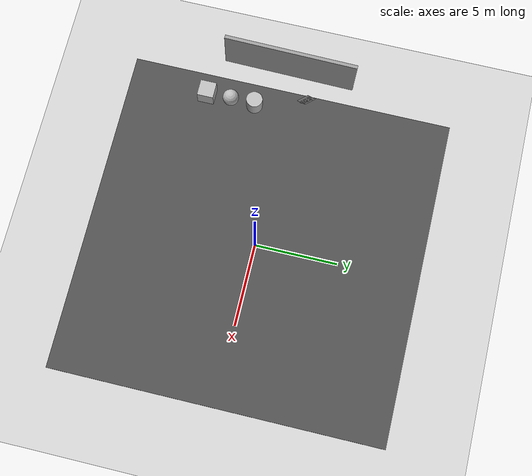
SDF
<sdf version="1.4">
 <world name="default">
  <model name="ground_plane">
   <static>1</static>
   <link name="link">
    <collision name="collision">
     <geometry><plane><normal>0 0 1</normal><size>100 100</size></plane></geometry>
     <surface><friction><ode><mu>100</mu><mu2>50</mu2></ode></friction></surface>
    </collision>
    <visual name="visual">
     <cast_shadows>0</cast_shadows>
     <geometry><plane><normal>0 0 1</normal><size>100 100</size></plane></geometry>
     <material>
      <script><uri>file://media/materials/scripts/gazebo.material</uri><name>Gazebo/Grey</name></script>
     </material>
    </visual>
    <velocity_decay><linear>0</linear><angular>0</angular></velocity_decay>
   </link>
  </model>
  <model name="grey_wall">
   <static>1</static>
   <link name="link">
    <pose>0 0 1.4 0 -0 0</pose>
    <collision name="collision"><geometry><box><size>7.5 0.2 2.8</size></box></geometry></collision>
    <visual name="visual">
     <cast_shadows>0</cast_shadows>
     <geometry><box><size>7.5 0.2 2.8</size></box></geometry>
     <material>
      <script>
       <uri>model://grey_wall/materials/scripts</uri>
       <uri>model://grey_wall/materials/textures</uri>
       <name>vrc/grey_wall</name>
      </script>
     </material>
    </visual>
    <velocity_decay><linear>0</linear><angular>0</angular></velocity_decay>
   </link>
   <pose>-9.26288 -0.192546 4.42606 0 -0 1.55593</pose>
  </model>
  <model name="textured_shapes">
   <pose>-8.70069 -3.6194 0.55 0 -0 0</pose>
   <link name="box">
    <pose>0 -1.5 0 0 -0 0</pose>
    <collision name="collision"><geometry><box><size>1 1 1</size></box></geometry></collision>
    <visual name="visual">
     <geometry><box><size>1 1 1</size></box></geometry>
     <material>
      <script>
       <uri>model://textured_shapes/materials/scripts</uri>
       <uri>model://textured_shapes/materials/textures</uri>
       <name>TexturedShape/Squares</name>
      </script>
     </material>
    </visual>
    <velocity_decay><linear>0</linear><angular>0</angular></velocity_decay>
    <inertial>
     <inertia><ixx>1</ixx><ixy>0</ixy><ixz>0</ixz><iyy>1</iyy><iyz>0</iyz><izz>1</izz></inertia>
     <mass>1</mass>
    </inertial>
   </link>
   <link name="sphere">
    <collision name="collision"><geometry><sphere><radius>0.5</radius></sphere></geometry></collision>
    <visual name="visual">
     <geometry><sphere><radius>0.5</radius></sphere></geometry>
     <material>
      <script>
       <uri>model://textured_shapes/materials/scripts</uri>
       <uri>model://textured_shapes/materials/textures</uri>
       <name>TexturedShape/Squares</name>
      </script>
     </material>
    </visual>
    <velocity_decay><linear>0</linear><angular>0</angular></velocity_decay>
    <inertial>
     <inertia><ixx>1</ixx><ixy>0</ixy><ixz>0</ixz><iyy>1</iyy><iyz>0</iyz><izz>1</izz></inertia>
     <mass>1</mass>
    </inertial>
   </link>
   <link name="cylinder">
    <pose>0 1.5 0 0 -0 0</pose>
    <collision name="collision">
     <geometry><cylinder><radius>0.5</radius><length>1</length></cylinder></geometry>
    </collision>
    <visual name="visual">
     <geometry><cylinder><radius>0.5</radius><length>1</length></cylinder></geometry>
     <material>
      <script>
       <uri>model://textured_shapes/materials/scripts</uri>
       <uri>model://textured_shapes/materials/textures</uri>
       <name>TexturedShape/Squares</name>
      </script>
     </material>
    </visual>
    <velocity_decay><linear>0</linear><angular>0</angular></velocity_decay>
    <inertial>
     <inertia><ixx>1</ixx><ixy>0</ixy><ixz>0</ixz><iyy>1</iyy><iyz>0</iyz><izz>1</izz></inertia>
     <mass>1</mass>
    </inertial>
   </link>
   <static>0</static>
  </model>
  <model name="asphalt_plane_0">
   <static>1</static>
   <link name="link">
    <collision name="collision"><geometry><box><size>20 20 0.1</size></box></geometry></collision>
    <visual name="visual">
     <cast_shadows>0</cast_shadows>
     <geometry><box><size>20 20 0.1</size></box></geometry>
     <material>
      <script>
       <uri>model://asphalt_plane/materials/scripts</uri>
       <uri>model://asphalt_plane/materials/textures</uri>
       <name>vrc/asphalt</name>
      </script>
     </material>
    </visual>
    <velocity_decay><linear>0</linear><angular>0</angular></velocity_decay>
   </link>
   <pose>-0.08673 -0.042897 0 0 -0 0</pose>
  </model>
  <model name="frc2016_roughterrain">
   <static>1</static>
   <link name="link">
    <visual name="platform">
     <pose>0 0 0.08269 0 -0 0</pose>
     <geometry><box><size>1.27 0.5969 0.003175</size></box></geometry>
    </visual>
    <collision name="platform">
     <pose>0 0 0.08269 0 -0 0</pose>
     <geometry><box><size>1.27 0.5969 0.003175</size></box></geometry>
    </collision>
    <visual name="row1_block1_sm">
     <pose>0.51435 0.1143 0.09698 0 -0 0</pose>
     <geometry><box><size>0.0762 0.0762 0.0254</size></box></geometry>
    </visual>
    <collision name="row1_block1_sm">
     <pose>0.51435 0.1143 0.09698 0 -0 0</pose>
     <geometry><box><size>0.0762 0.0762 0.0254</size></box></geometry>
    </collision>
    <visual name="row1_block2_lg">
     <pose>0.40005 0.1143 0.12238 0 -0 0</pose>
     <geometry><box><size>0.0762 0.0762 0.0762</size></box></geometry>
    </visual>
    <collision name="row1_block2_lg">
     <pose>0.40005 0.1143 0.12238 0 -0 0</pose>
     <geometry><box><size>0.0762 0.0762 0.0762</size></box></geometry>
    </collision>
    <visual name="row1_block3_md">
     <pose>0.28575 0.1143 0.10968 0 -0 0</pose>
     <geometry><box><size>0.0762 0.0762 0.0508</size></box></geometry>
    </visual>
    <collision name="row1_block3_md">
     <pose>0.28575 0.1143 0.10968 0 -0 0</pose>
     <geometry><box><size>0.0762 0.0762 0.0508</size></box></geometry>
    </collision>
    <visual name="row1_block4_sm">
     <pose>0.17145 0.1143 0.09698 0 -0 0</pose>
     <geometry><box><size>0.0762 0.0762 0.0254</size></box></geometry>
    </visual>
    <collision name="row1_block4_sm">
     <pose>0.17145 0.1143 0.09698 0 -0 0</pose>
     <geometry><box><size>0.0762 0.0762 0.0254</size></box></geometry>
    </collision>
    <visual name="row1_block5_md">
     <pose>0.05715 0.1143 0.10968 0 -0 0</pose>
     <geometry><box><size>0.0762 0.0762 0.0508</size></box></geometry>
    </visual>
    <collision name="row1_block5_md">
     <pose>0.05715 0.1143 0.10968 0 -0 0</pose>
     <geometry><box><size>0.0762 0.0762 0.0508</size></box></geometry>
    </collision>
    <visual name="row1_block6_lg">
     <pose>-0.05715 0.1143 0.12238 0 -0 0</pose>
     <geometry><box><size>0.0762 0.0762 0.0762</size></box></geometry>
    </visual>
    <collision name="row1_block6_lg">
     <pose>-0.05715 0.1143 0.12238 0 -0 0</pose>
     <geometry><box><size>0.0762 0.0762 0.0762</size></box></geometry>
    </collision>
    <visual name="row1_block7_sm">
     <pose>-0.17145 0.1143 0.09698 0 -0 0</pose>
     <geometry><box><size>0.0762 0.0762 0.0254</size></box></geometry>
    </visual>
    <collision name="row1_block7_sm">
     <pose>-0.17145 0.1143 0.09698 0 -0 0</pose>
     <geometry><box><size>0.0762 0.0762 0.0254</size></box></geometry>
    </collision>
    <visual name="row1_block8_sm">
     <pose>-0.28575 0.1143 0.09698 0 -0 0</pose>
     <geometry><box><size>0.0762 0.0762 0.0254</size></box></geometry>
    </visual>
    <collision name="row1_block8_sm">
     <pose>-0.28575 0.1143 0.09698 0 -0 0</pose>
     <geometry><box><size>0.0762 0.0762 0.0254</size></box></geometry>
    </collision>
    <visual name="row1_block9_md">
     <pose>-0.40005 0.1143 0.10968 0 -0 0</pose>
     <geometry><box><size>0.0762 0.0762 0.0508</size></box></geometry>
    </visual>
    <collision name="row1_block9_md">
     <pose>-0.40005 0.1143 0.10968 0 -0 0</pose>
     <geometry><box><size>0.0762 0.0762 0.0508</size></box></geometry>
    </collision>
    <visual name="row1_block10_lg">
     <pose>-0.51435 0.1143 0.12238 0 -0 0</pose>
     <geometry><box><size>0.0762 0.0762 0.0762</size></box></geometry>
    </visual>
    <collision name="row1_block10_lg">
     <pose>-0.51435 0.1143 0.12238 0 -0 0</pose>
     <geometry><box><size>0.0762 0.0762 0.0762</size></box></geometry>
    </collision>
    <visual name="row2_block1_md">
     <pose>0.5715 0 0.10968 0 -0 0</pose>
     <geometry><box><size>0.0762 0.0762 0.0508</size></box></geometry>
    </visual>
    <collision name="row2_block1_md">
     <pose>0.5715 0 0.10968 0 -0 0</pose>
     <geometry><box><size>0.0762 0.0762 0.0508</size></box></geometry>
    </collision>
    <visual name="row2_block2_sm">
     <pose>0.4572 0 0.09698 0 -0 0</pose>
     <geometry><box><size>0.0762 0.0762 0.0254</size></box></geometry>
    </visual>
    <collision name="row2_block2_sm">
     <pose>0.4572 0 0.09698 0 -0 0</pose>
     <geometry><box><size>0.0762 0.0762 0.0254</size></box></geometry>
    </collision>
    <visual name="row2_block3_lg">
     <pose>0.3429 0 0.12238 0 -0 0</pose>
     <geometry><box><size>0.0762 0.0762 0.0762</size></box></geometry>
    </visual>
    <collision name="row2_block3_lg">
     <pose>0.3429 0 0.12238 0 -0 0</pose>
     <geometry><box><size>0.0762 0.0762 0.0762</size></box></geometry>
    </collision>
    <visual name="row2_block4_md">
     <pose>0.2286 0 0.10968 0 -0 0</pose>
     <geometry><box><size>0.0762 0.0762 0.0508</size></box></geometry>
    </visual>
    <collision name="row2_block4_md">
     <pose>0.2286 0 0.10968 0 -0 0</pose>
     <geometry><box><size>0.0762 0.0762 0.0508</size></box></geometry>
    </collision>
    <visual name="row2_block5_lg">
     <pose>0.1143 0 0.12238 0 -0 0</pose>
     <geometry><box><size>0.0762 0.0762 0.0762</size></box></geometry>
    </visual>
    <collision name="row2_block5_lg">
     <pose>0.1143 0 0.12238 0 -0 0</pose>
     <geometry><box><size>0.0762 0.0762 0.0762</size></box></geometry>
    </collision>
    <visual name="row2_block6_sm">
     <pose>0 0 0.09698 0 -0 0</pose>
     <geometry><box><size>0.0762 0.0762 0.0254</size></box></geometry>
    </visual>
    <collision name="row2_block6_sm">
     <pose>0 0 0.09698 0 -0 0</pose>
     <geometry><box><size>0.0762 0.0762 0.0254</size></box></geometry>
    </collision>
    <visual name="row2_block7_md">
     <pose>-0.1143 0 0.10968 0 -0 0</pose>
     <geometry><box><size>0.0762 0.0762 0.0508</size></box></geometry>
    </visual>
    <collision name="row2_block7_md">
     <pose>-0.1143 0 0.10968 0 -0 0</pose>
     <geometry><box><size>0.0762 0.0762 0.0508</size></box></geometry>
    </collision>
    <visual name="row2_block8_lg">
     <pose>-0.2286 0 0.12238 0 -0 0</pose>
     <geometry><box><size>0.0762 0.0762 0.0762</size></box></geometry>
    </visual>
    <collision name="row2_block8_lg">
     <pose>-0.2286 0 0.12238 0 -0 0</pose>
     <geometry><box><size>0.0762 0.0762 0.0762</size></box></geometry>
    </collision>
    <visual name="row2_block9_sm">
     <pose>-0.3429 0 0.09698 0 -0 0</pose>
     <geometry><box><size>0.0762 0.0762 0.0254</size></box></geometry>
    </visual>
    <collision name="row2_block9_sm">
     <pose>-0.3429 0 0.09698 0 -0 0</pose>
     <geometry><box><size>0.0762 0.0762 0.0254</size></box></geometry>
    </collision>
    <visual name="row2_block10_lg">
     <pose>-0.4572 0 0.12238 0 -0 0</pose>
     <geometry><box><size>0.0762 0.0762 0.0762</size></box></geometry>
    </visual>
    <collision name="row2_block10_lg">
     <pose>-0.4572 0 0.12238 0 -0 0</pose>
     <geometry><box><size>0.0762 0.0762 0.0762</size></box></geometry>
    </collision>
    <visual name="row2_block11_md">
     <pose>-0.5715 0 0.10968 0 -0 0</pose>
     <geometry><box><size>0.0762 0.0762 0.0508</size></box></geometry>
    </visual>
    <collision name="row2_block11_md">
     <pose>-0.5715 0 0.10968 0 -0 0</pose>
     <geometry><box><size>0.0762 0.0762 0.0508</size></box></geometry>
    </collision>
    <visual name="row3_block1_lg">
     <pose>0.51435 -0.1143 0.12238 0 -0 0</pose>
     <geometry><box><size>0.0762 0.0762 0.0762</size></box></geometry>
    </visual>
    <collision name="row3_block1_lg">
     <pose>0.51435 -0.1143 0.12238 0 -0 0</pose>
     <geometry><box><size>0.0762 0.0762 0.0762</size></box></geometry>
    </collision>
    <visual name="row3_block2_md">
     <pose>0.40005 -0.1143 0.10968 0 -0 0</pose>
     <geometry><box><size>0.0762 0.0762 0.0508</size></box></geometry>
    </visual>
    <collision name="row3_block2_md">
     <pose>0.40005 -0.1143 0.10968 0 -0 0</pose>
     <geometry><box><size>0.0762 0.0762 0.0508</size></box></geometry>
    </collision>
    <visual name="row3_block3_lg">
     <pose>0.28575 -0.1143 0.12238 0 -0 0</pose>
     <geometry><box><size>0.0762 0.0762 0.0762</size></box></geometry>
    </visual>
    <collision name="row3_block3_lg">
     <pose>0.28575 -0.1143 0.12238 0 -0 0</pose>
     <geometry><box><size>0.0762 0.0762 0.0762</size></box></geometry>
    </collision>
    <visual name="row3_block4_sm">
     <pose>0.17145 -0.1143 0.09698 0 -0 0</pose>
     <geometry><box><size>0.0762 0.0762 0.0254</size></box></geometry>
    </visual>
    <collision name="row3_block4_sm">
     <pose>0.17145 -0.1143 0.09698 0 -0 0</pose>
     <geometry><box><size>0.0762 0.0762 0.0254</size></box></geometry>
    </collision>
    <visual name="row3_block5_md">
     <pose>0.05715 -0.1143 0.10968 0 -0 0</pose>
     <geometry><box><size>0.0762 0.0762 0.0508</size></box></geometry>
    </visual>
    <collision name="row3_block5_md">
     <pose>0.05715 -0.1143 0.10968 0 -0 0</pose>
     <geometry><box><size>0.0762 0.0762 0.0508</size></box></geometry>
    </collision>
    <visual name="row3_block6_md">
     <pose>-0.05715 -0.1143 0.10968 0 -0 0</pose>
     <geometry><box><size>0.0762 0.0762 0.0508</size></box></geometry>
    </visual>
    <collision name="row3_block6_md">
     <pose>-0.05715 -0.1143 0.10968 0 -0 0</pose>
     <geometry><box><size>0.0762 0.0762 0.0508</size></box></geometry>
    </collision>
    <visual name="row3_block7_lg">
     <pose>-0.17145 -0.1143 0.12238 0 -0 0</pose>
     <geometry><box><size>0.0762 0.0762 0.0762</size></box></geometry>
    </visual>
    <collision name="row3_block7_lg">
     <pose>-0.17145 -0.1143 0.12238 0 -0 0</pose>
     <geometry><box><size>0.0762 0.0762 0.0762</size></box></geometry>
    </collision>
    <visual name="row3_block8_sm">
     <pose>-0.28575 -0.1143 0.09698 0 -0 0</pose>
     <geometry><box><size>0.0762 0.0762 0.0254</size></box></geometry>
    </visual>
    <collision name="row3_block8_sm">
     <pose>-0.28575 -0.1143 0.09698 0 -0 0</pose>
     <geometry><box><size>0.0762 0.0762 0.0254</size></box></geometry>
    </collision>
    <visual name="row3_block9_md">
     <pose>-0.40005 -0.1143 0.10968 0 -0 0</pose>
     <geometry><box><size>0.0762 0.0762 0.0508</size></box></geometry>
    </visual>
    <collision name="row3_block9_md">
     <pose>-0.40005 -0.1143 0.10968 0 -0 0</pose>
     <geometry><box><size>0.0762 0.0762 0.0508</size></box></geometry>
    </collision>
    <visual name="row3_block10_sm">
     <pose>-0.51435 -0.1143 0.09698 0 -0 0</pose>
     <geometry><box><size>0.0762 0.0762 0.0254</size></box></geometry>
    </visual>
    <collision name="row3_block10_sm">
     <pose>-0.51435 -0.1143 0.09698 0 -0 0</pose>
     <geometry><box><size>0.0762 0.0762 0.0254</size></box></geometry>
    </collision>
    <velocity_decay><linear>0</linear><angular>0</angular></velocity_decay>
   </link>
   <pose>-9.29546 1.00174 1.48268 -1.57835 1.07404 -1.57744</pose>
  </model>
 </world>
</sdf>
